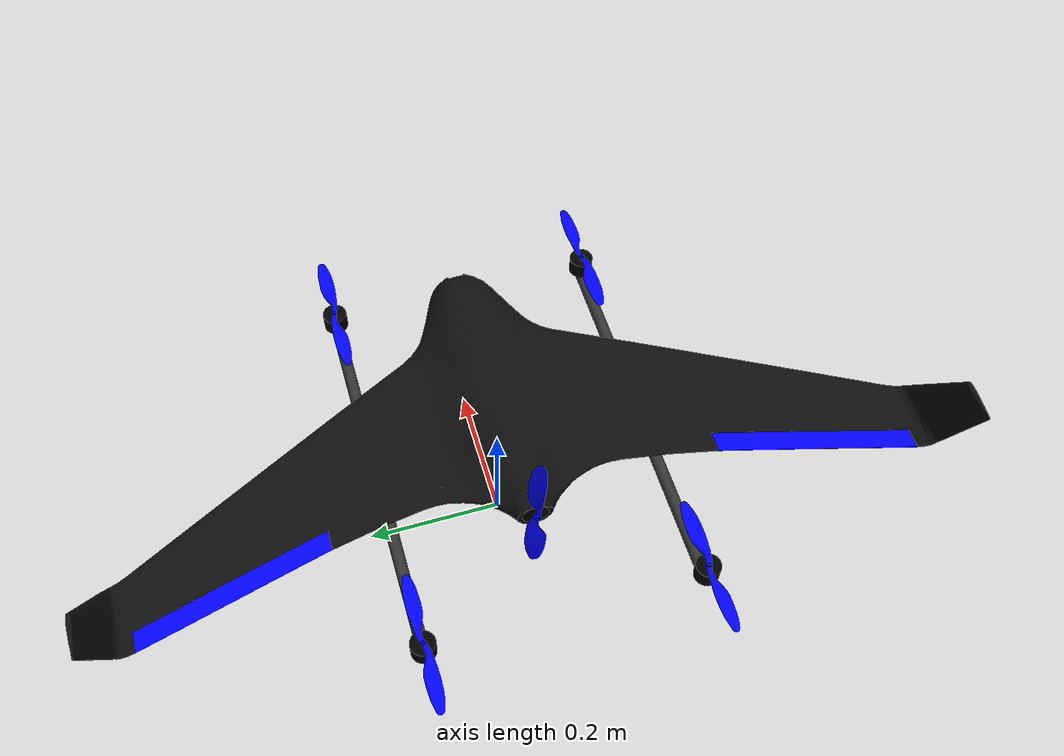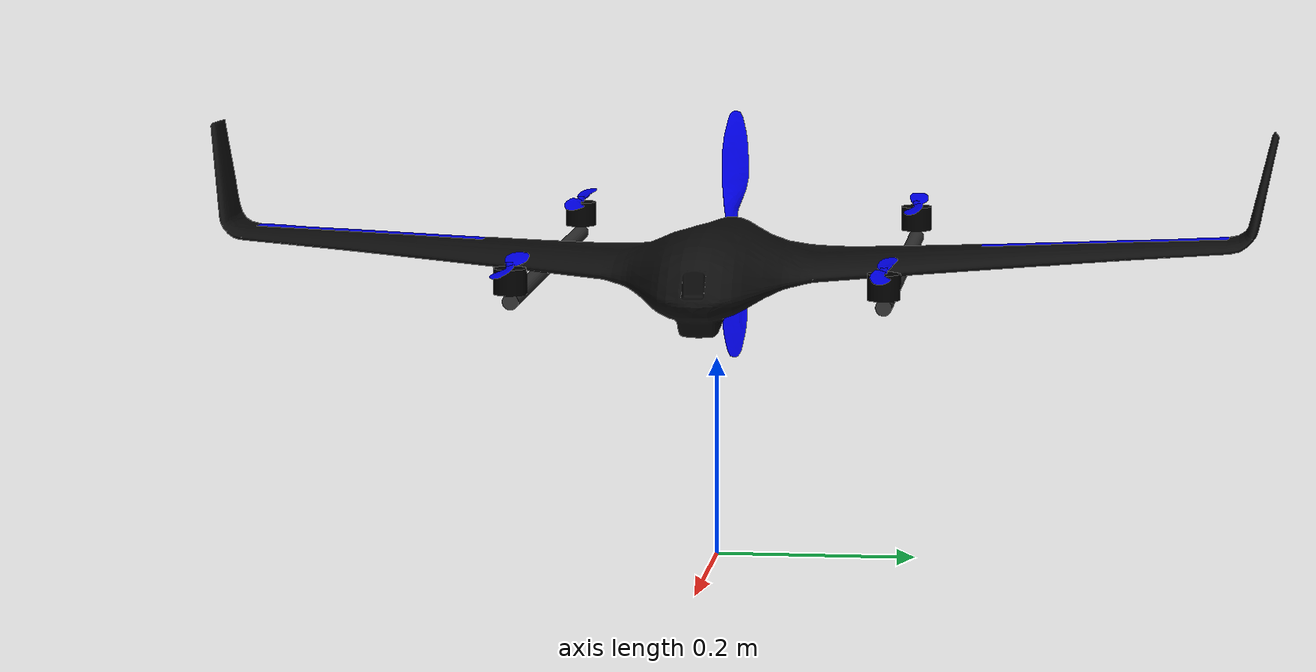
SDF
<?xml version="1.0" ?>
<sdf version="1.9">
  <model name="super_vtol">
    <!-- Spawn slightly above ground -->
    <pose>0 0 0.3 0 0 0</pose>

    <!--
      BASE LINK
      Represents fuselage + wing structure of the Super Stingray VTOL.
      Mass here (~2.5 kg) plus rotors, elevons, and sensors will sum
      to approximately 2.8 kg AUW.
    -->
    <link name="base_link">
      <!-- Link pose in model frame -->
      <pose>0 0 0 0 0 0</pose>

      <!-- Inertial properties: CG ~60 mm behind origin in X -->
      <inertial>
        <pose>-0.06 0 0 0 0 0</pose>
        <mass>2.5</mass>
        <inertia>
          <ixx>0.20</ixx>
          <ixy>0</ixy>
          <ixz>0</ixz>
          <iyy>0.15</iyy>
          <iyz>0</iyz>
          <izz>0.25</izz>
        </inertia>
      </inertial>

      <!-- Collision geometry: simple box approximating fuselage + wing volume -->
      <collision name="base_link_collision">
        <pose>0 0 -0.05 0 0 0</pose>
        <geometry>
          <box>
            <!-- length (X), span (Y), thickness (Z) -->
            <size>0.70 1.13 0.12</size>
          </box>
        </geometry>
        <surface>
          <friction>
            <ode>
              <!-- Low friction to avoid sticky ground behavior -->
              <mu>0.01</mu>
              <mu2>0.01</mu2>
            </ode>
          </friction>
          <contact>
            <ode>
              <kp>100000.0</kp>
              <kd>1.0</kd>
              <min_depth>0.001</min_depth>
            </ode>
          </contact>
        </surface>
      </collision>

      <!-- Main visual: Super Stingray wing + fuselage mesh -->
      <visual name="base_link_visual">
        <geometry>
          <mesh>
            <!-- Keep same scale as working standard_vtol to avoid deformation -->
            <scale>0.52 0.52 0.52</scale>
            <uri>model://super_vtol/meshes/super_wing.dae</uri>
          </mesh>
        </geometry>
        <material>
          <ambient>0.05 0.05 0.05 1</ambient>
          <diffuse>0.05 0.05 0.05 1</diffuse>
        </material>
      </visual>

      <!-- Left boom (visual only) -->
      <visual name="left_boom">
        <pose>-0.06 0.18 -0.0175 0 1.5707 0</pose>
        <geometry>
          <cylinder>
            <length>0.50</length>
            <radius>0.008</radius>
          </cylinder>
        </geometry>
        <material>
          <ambient>0.2 0.2 0.2 1</ambient>
          <diffuse>0.2 0.2 0.2 1</diffuse>
        </material>
      </visual>

      <!-- Right boom (visual only) -->
      <visual name="right_boom">
        <pose>-0.06 -0.18 -0.0175 0 1.5707 0</pose>
        <geometry>
          <cylinder>
            <length>0.50</length>
            <radius>0.008</radius>
          </cylinder>
        </geometry>
        <material>
          <ambient>0.2 0.2 0.2 1</ambient>
          <diffuse>0.2 0.2 0.2 1</diffuse>
        </material>
      </visual>

      <!-- Motor can geometries (visual only, props are separate rotor links) -->
      <visual name="motor_fr">
        <pose>0.19 -0.18 0.003 0 0 0</pose>
        <geometry>
          <cylinder>
            <length>0.025</length>
            <radius>0.016</radius>
          </cylinder>
        </geometry>
        <material>
          <ambient>0 0 0 1</ambient>
          <diffuse>0 0 0 1</diffuse>
        </material>
      </visual>

      <visual name="motor_rr">
        <pose>-0.31 -0.18 0.003 0 0 0</pose>
        <geometry>
          <cylinder>
            <length>0.025</length>
            <radius>0.016</radius>
          </cylinder>
        </geometry>
        <material>
          <ambient>0 0 0 1</ambient>
          <diffuse>0 0 0 1</diffuse>
        </material>
      </visual>

      <visual name="motor_fl">
        <pose>0.19 0.18 0.003 0 0 0</pose>
        <geometry>
          <cylinder>
            <length>0.025</length>
            <radius>0.016</radius>
          </cylinder>
        </geometry>
        <material>
          <ambient>0 0 0 1</ambient>
          <diffuse>0 0 0 1</diffuse>
        </material>
      </visual>

      <visual name="motor_rl">
        <pose>-0.31 0.18 0.003 0 0 0</pose>
        <geometry>
          <cylinder>
            <length>0.025</length>
            <radius>0.016</radius>
          </cylinder>
        </geometry>
        <material>
          <ambient>0 0 0 1</ambient>
          <diffuse>0 0 0 1</diffuse>
        </material>
      </visual>

      <!-- Rear pusher motor can (visual only, prop will be separate rotor link) -->
      <visual name="motor_pusher">
        <pose>-0.16 0 0 0 1.57 0</pose>
        <geometry>
          <cylinder>
            <length>0.035</length>
            <radius>0.018</radius>
          </cylinder>
        </geometry>
        <material>
          <ambient>0 0 0 1</ambient>
          <diffuse>0 0 0 1</diffuse>
        </material>
      </visual>

    </link>
    <!-- VTOL rotor links will be added next -->
    <!-- VTOL ROTORS (4 vertical + 1 rear pusher)                  -->

    <!-- VTOL rotor 0: front-right (uses CCW mesh) -->
    <link name="rotor_0">
      <pose>0.19 -0.18 0.018 0 0 0</pose>
      <inertial>
        <mass>0.04</mass>
        <inertia>
          <ixx>5e-5</ixx>
          <iyy>5e-5</iyy>
          <izz>5e-5</izz>
        </inertia>
      </inertial>
      <visual name="rotor_0_visual">
        <geometry>
          <mesh>
            <scale>0.7 0.7 0.7</scale>
            <uri>model://super_vtol/meshes/vtol_prop_ccw.dae</uri>
          </mesh>
        </geometry>
        <material>
          <ambient>0 0 1 1</ambient>
          <diffuse>0 0 1 1</diffuse>
        </material>
      </visual>
    </link>

    <joint name="rotor_0_joint" type="revolute">
      <parent>base_link</parent>
      <child>rotor_0</child>
      <axis>
        <xyz>0 0 1</xyz>
        <limit>
          <lower>-1e16</lower>
          <upper>1e16</upper>
        </limit>
        <!-- Small damping to avoid oscillatory spin -->
        <dynamics>
          <damping>0.003</damping>
        </dynamics>
      </axis>
    </joint>

    <!-- Two-blade aero model for rotor 0 -->
    <plugin filename="gz-sim-lift-drag-system" name="gz::sim::systems::LiftDrag">
      <!-- Blade 1 -->
      <a0>0.3</a0>
      <cla>4.25</cla>
      <cda>0.01</cda>
      <area>0.01</area>
      <cp>0.085 0 0</cp>
      <air_density>1.2041</air_density>
      <!-- Tangential direction -->
      <forward>0 1 0</forward>
      <!-- Lift upwards in +Z -->
      <upward>0 0 1</upward>
      <link_name>rotor_0</link_name>
    </plugin>

    <plugin filename="gz-sim-lift-drag-system" name="gz::sim::systems::LiftDrag">
      <!-- Blade 2 (opposite side) -->
      <a0>0.3</a0>
      <cla>4.25</cla>
      <cda>0.01</cda>
      <area>0.01</area>
      <cp>-0.085 0 0</cp>
      <air_density>1.2041</air_density>
      <forward>0 -1 0</forward>
      <upward>0 0 1</upward>
      <link_name>rotor_0</link_name>
    </plugin>

    <!-- VTOL rotor 1: rear-left (uses CCW mesh) -->
    <link name="rotor_1">
      <pose>-0.31 0.18 0.018 0 0 0</pose>
      <inertial>
        <mass>0.04</mass>
        <inertia>
          <ixx>5e-5</ixx>
          <iyy>5e-5</iyy>
          <izz>5e-5</izz>
        </inertia>
      </inertial>
      <visual name="rotor_1_visual">
        <geometry>
          <mesh>
            <scale>0.7 0.7 0.7</scale>
            <uri>model://super_vtol/meshes/vtol_prop_ccw.dae</uri>
          </mesh>
        </geometry>
        <material>
          <ambient>0 0 1 1</ambient>
          <diffuse>0 0 1 1</diffuse>
        </material>
      </visual>
    </link>

    <joint name="rotor_1_joint" type="revolute">
      <parent>base_link</parent>
      <child>rotor_1</child>
      <axis>
        <xyz>0 0 1</xyz>
        <dynamics>
          <damping>0.003</damping>
        </dynamics>
      </axis>
    </joint>

    <!-- Two-blade aero model for rotor 1 -->
    <plugin filename="gz-sim-lift-drag-system" name="gz::sim::systems::LiftDrag">
      <!-- Blade 1 -->
      <a0>0.3</a0>
      <cla>4.25</cla>
      <cda>0.01</cda>
      <area>0.01</area>
      <cp>0.085 0 0</cp>
      <air_density>1.2041</air_density>
      <forward>0 1 0</forward>
      <upward>0 0 1</upward>
      <link_name>rotor_1</link_name>
    </plugin>

    <plugin filename="gz-sim-lift-drag-system" name="gz::sim::systems::LiftDrag">
      <!-- Blade 2 -->
      <a0>0.3</a0>
      <cla>4.25</cla>
      <cda>0.01</cda>
      <area>0.01</area>
      <cp>-0.085 0 0</cp>
      <air_density>1.2041</air_density>
      <forward>0 -1 0</forward>
      <upward>0 0 1</upward>
      <link_name>rotor_1</link_name>
    </plugin>

    <!-- VTOL rotor 2: front-left (uses CW mesh) -->
    <link name="rotor_2">
      <pose>0.19 0.18 0.018 0 0 0</pose>
      <inertial>
        <mass>0.04</mass>
        <inertia>
          <ixx>5e-5</ixx>
          <iyy>5e-5</iyy>
          <izz>5e-5</izz>
        </inertia>
      </inertial>
      <visual name="rotor_2_visual">
        <geometry>
          <mesh>
            <scale>0.7 0.7 0.7</scale>
            <uri>model://super_vtol/meshes/vtol_prop_cw.dae</uri>
          </mesh>
        </geometry>
        <material>
          <ambient>0 0 1 1</ambient>
          <diffuse>0 0 1 1</diffuse>
        </material>
      </visual>
    </link>

    <joint name="rotor_2_joint" type="revolute">
      <parent>base_link</parent>
      <child>rotor_2</child>
      <axis>
        <xyz>0 0 1</xyz>
        <dynamics>
          <damping>0.003</damping>
        </dynamics>
      </axis>
    </joint>

    <!-- Two-blade aero model for rotor 2 -->
    <plugin filename="gz-sim-lift-drag-system" name="gz::sim::systems::LiftDrag">
      <!-- Blade 1 -->
      <a0>0.3</a0>
      <cla>4.25</cla>
      <cda>0.01</cda>
      <area>0.01</area>
      <cp>0.085 0 0</cp>
      <air_density>1.2041</air_density>
      <forward>0 -1 0</forward>
      <upward>0 0 1</upward>
      <link_name>rotor_2</link_name>
    </plugin>

    <plugin filename="gz-sim-lift-drag-system" name="gz::sim::systems::LiftDrag">
      <!-- Blade 2 -->
      <a0>0.3</a0>
      <cla>4.25</cla>
      <cda>0.01</cda>
      <area>0.01</area>
      <cp>-0.085 0 0</cp>
      <air_density>1.2041</air_density>
      <forward>0 1 0</forward>
      <upward>0 0 1</upward>
      <link_name>rotor_2</link_name>
    </plugin>

    <!-- VTOL rotor 3: rear-right (uses CW mesh) -->
    <link name="rotor_3">
      <pose>-0.31 -0.18 0.018 0 0 0</pose>
      <inertial>
        <mass>0.04</mass>
        <inertia>
          <ixx>5e-5</ixx>
          <iyy>5e-5</iyy>
          <izz>5e-5</izz>
        </inertia>
      </inertial>
      <visual name="rotor_3_visual">
        <geometry>
          <mesh>
            <scale>0.7 0.7 0.7</scale>
            <uri>model://super_vtol/meshes/vtol_prop_cw.dae</uri>
          </mesh>
        </geometry>
        <material>
          <ambient>0 0 1 1</ambient>
          <diffuse>0 0 1 1</diffuse>
        </material>
      </visual>
    </link>

    <joint name="rotor_3_joint" type="revolute">
      <parent>base_link</parent>
      <child>rotor_3</child>
      <axis>
        <xyz>0 0 1</xyz>
        <dynamics>
          <damping>0.003</damping>
        </dynamics>
      </axis>
    </joint>

    <!-- Two-blade aero model for rotor 3 -->
    <plugin filename="gz-sim-lift-drag-system" name="gz::sim::systems::LiftDrag">
      <!-- Blade 1 -->
      <a0>0.3</a0>
      <cla>4.25</cla>
      <cda>0.01</cda>
      <area>0.01</area>
      <cp>0.085 0 0</cp>
      <air_density>1.2041</air_density>
      <forward>0 -1 0</forward>
      <upward>0 0 1</upward>
      <link_name>rotor_3</link_name>
    </plugin>

    <plugin filename="gz-sim-lift-drag-system" name="gz::sim::systems::LiftDrag">
      <!-- Blade 2 -->
      <a0>0.3</a0>
      <cla>4.25</cla>
      <cda>0.01</cda>
      <area>0.01</area>
      <cp>-0.085 0 0</cp>
      <air_density>1.2041</air_density>
      <forward>0 1 0</forward>
      <upward>0 0 1</upward>
      <link_name>rotor_3</link_name>
    </plugin>

    <!-- Rear pusher rotor (forward-flight prop) -->
    <link name="rotor_pusher">
      <pose>-0.18 0 0 0 1.57 0</pose>
      <inertial>
        <mass>0.06</mass>
        <inertia>
          <ixx>8e-5</ixx>
          <iyy>8e-5</iyy>
          <izz>8e-5</izz>
        </inertia>
      </inertial>
      <visual name="rotor_pusher_visual">
        <geometry>
          <mesh>
            <scale>1.0 1.0 1.0</scale>
            <uri>model://super_vtol/meshes/vtol_prop_ccw.dae</uri>
          </mesh>
        </geometry>
        <material>
          <ambient>0 0 1 1</ambient>
          <diffuse>0 0 1 1</diffuse>
        </material>
      </visual>
    </link>

    <joint name="rotor_pusher_joint" type="revolute">
      <parent>base_link</parent>
      <child>rotor_pusher</child>
      <axis>
        <xyz>0 0 1</xyz>
      </axis>
    </joint>

    <!-- Aerodynamics for rear pusher rotor (thrust along +X) -->
    <plugin filename="gz-sim-lift-drag-system" name="gz::sim::systems::LiftDrag">
      <!-- Blade 1 -->
      <a0>0.3</a0>
      <cla>4.5</cla>
      <cda>0.02</cda>
      <area>0.03</area>
      <cp>0.06 0 0</cp>
      <air_density>1.2041</air_density>
      <!-- Tangential direction -->
      <forward>0 1 0</forward>
      <!-- Lift direction aligned with +X (forward thrust) -->
      <upward>1 0 0</upward>
      <link_name>rotor_pusher</link_name>
    </plugin>

    <plugin filename="gz-sim-lift-drag-system" name="gz::sim::systems::LiftDrag">
      <!-- Blade 2 -->
      <a0>0.3</a0>
      <cla>4.5</cla>
      <cda>0.02</cda>
      <area>0.03</area>
      <cp>-0.11 0 0</cp>
      <air_density>1.2041</air_density>
      <forward>0 -1 0</forward>
      <upward>1 0 0</upward>
      <link_name>rotor_pusher</link_name>
    </plugin>
    <!-- MAIN WING AERODYNAMICS (S5020-BASED APPROXIMATION)       -->

    <plugin filename="gz-sim-lift-drag-system" name="gz::sim::systems::LiftDrag">
      <!-- Zero-lift angle (rad), small positive since S5020 has camber -->
      <a0>0.13</a0>
      <!-- Lift curve slope (1/rad) -->
      <cla>3.7</cla>
      <!-- Baseline drag coefficient (CD0) -->
      <cda>0.06</cda>
      <!-- Effective reference area (m^2) for entire wing/body -->
      <area>0.31</area>
      <air_density>1.2041</air_density>
      <!-- Body-X forward, Z up in model frame -->
      <forward>1 0 0</forward>
      <upward>0 0 1</upward>
      <link_name>base_link</link_name>
    </plugin>

    <!-- ELEVONS (LEFT / RIGHT) + THEIR AERO EFFECTS              -->

    <!-- LEFT ELEVON LINK -->
    <link name="left_elevon">
      <inertial>
        <mass>0.05</mass>
        <inertia>
          <ixx>0.001</ixx>
          <iyy>0.001</iyy>
          <izz>0.001</izz>
        </inertia>
      </inertial>
      <visual name="left_elevon_visual">
        <geometry>
          <mesh>
            <!-- Same scale as original X8 elevon mesh -->
            <scale>0.52 0.52 0.52</scale>
            <uri>model://super_vtol/meshes/super_elevon_left.dae</uri>
          </mesh>
        </geometry>
        <material>
          <ambient>0 0 1 1</ambient>
          <diffuse>0 0 1 1</diffuse>
        </material>
      </visual>
    </link>

    <!-- LEFT ELEVON JOINT (HINGE) -->
    <joint name="left_elevon_joint" type="revolute">
      <parent>base_link</parent>
      <child>left_elevon</child>
      <!-- Position of hinge on left wing trailing edge -->
      <pose>-0.25 0.40 0 0 0 0</pose>
      <axis>
        <!-- Hinge axis along body-Y -->
        <xyz>0 1 0</xyz>
        <limit>
          <!-- Approx. ±30 degrees -->
          <lower>-0.53</lower>
          <upper>0.53</upper>
        </limit>
        <dynamics>
          <!-- Enough damping and stiffness to avoid flutter -->
          <damping>5.0</damping>
          <spring_stiffness>100.0</spring_stiffness>
        </dynamics>
      </axis>
    </joint>

    <!-- LEFT ELEVON AERODYNAMIC EFFECT -->
    <plugin filename="gz-sim-lift-drag-system" name="gz::sim::systems::LiftDrag">
      <!-- Baseline angle offset for elevon section -->
      <a0>0.15</a0>
      <!-- High lift slope since this is a control surface section -->
      <cla>6.8</cla>
      <cda>0.06</cda>
      <!-- Small reference area for left elevon (m^2) -->
      <area>0.04</area>
      <air_density>1.2041</air_density>
      <forward>1 0 0</forward>
      <upward>0 0 1</upward>
      <!-- Force applied to main body to represent elevon effect -->
      <link_name>base_link</link_name>
      <!-- Control coupling from joint angle to CL -->
      <control_joint_name>left_elevon_joint</control_joint_name>
      <!-- Negative: up-elevon (positive deflection) reduces lift on that side for roll -->
      <control_joint_rad_to_cl>-4.0</control_joint_rad_to_cl>
    </plugin>

    <!-- RIGHT ELEVON LINK -->
    <link name="right_elevon">
      <inertial>
        <mass>0.05</mass>
        <inertia>
          <ixx>0.001</ixx>
          <iyy>0.001</iyy>
          <izz>0.001</izz>
        </inertia>
      </inertial>
      <visual name="right_elevon_visual">
        <geometry>
          <mesh>
            <scale>0.52 0.52 0.52</scale>
            <uri>model://super_vtol/meshes/super_elevon_right.dae</uri>
          </mesh>
        </geometry>
        <material>
          <ambient>0 0 1 1</ambient>
          <diffuse>0 0 1 1</diffuse>
        </material>
      </visual>
    </link>

    <!-- RIGHT ELEVON JOINT (HINGE) -->
    <joint name="right_elevon_joint" type="revolute">
      <parent>base_link</parent>
      <child>right_elevon</child>
      <!-- Symmetric position on right wing trailing edge -->
      <pose>-0.25 -0.40 0 0 0 0</pose>
      <axis>
        <xyz>0 1 0</xyz>
        <limit>
          <lower>-0.53</lower>
          <upper>0.53</upper>
        </limit>
        <dynamics>
          <damping>5.0</damping>
          <spring_stiffness>100.0</spring_stiffness>
        </dynamics>
      </axis>
    </joint>

    <!-- RIGHT ELEVON AERODYNAMIC EFFECT -->
    <plugin filename="gz-sim-lift-drag-system" name="gz::sim::systems::LiftDrag">
      <a0>0.15</a0>
      <cla>6.8</cla>
      <cda>0.06</cda>
      <area>0.04</area>
      <air_density>1.2041</air_density>
      <forward>1 0 0</forward>
      <upward>0 0 1</upward>
      <link_name>base_link</link_name>
      <control_joint_name>right_elevon_joint</control_joint_name>
      <control_joint_rad_to_cl>-4.0</control_joint_rad_to_cl>
    </plugin>
    <!-- IMU LINK (SENSOR FOR ARDUPILOT)                          -->

    <link name="imu_link">
      <inertial>
        <mass>0.001</mass>
        <inertia>
          <ixx>1e-9</ixx>
          <iyy>1e-9</iyy>
          <izz>1e-9</izz>
        </inertia>
      </inertial>
      <sensor name="imu_sensor" type="imu">
        <!-- Match orientation you used previously -->
        <pose>0 0 0 3.141593 0 0</pose>
        <always_on>1</always_on>
        <update_rate>1000.0</update_rate>
      </sensor>
    </link>

    <joint name="imu_joint" type="fixed">
      <parent>base_link</parent>
      <child>imu_link</child>
    </joint>

    <!-- GENERIC GAZEBO UTILITY PLUGINS                           -->

    <!-- Publish joint states for visualization / debugging -->
    <plugin filename="gz-sim-joint-state-publisher-system"
            name="gz::sim::systems::JointStatePublisher"/>

    <!-- Allow external systems (ArduPilotPlugin) to apply forces to joints -->
    <plugin filename="gz-sim-apply-joint-force-system"
            name="gz::sim::systems::ApplyJointForce">
      <joint_name>rotor_0_joint</joint_name>
    </plugin>

    <plugin filename="gz-sim-apply-joint-force-system"
            name="gz::sim::systems::ApplyJointForce">
      <joint_name>rotor_1_joint</joint_name>
    </plugin>

    <plugin filename="gz-sim-apply-joint-force-system"
            name="gz::sim::systems::ApplyJointForce">
      <joint_name>rotor_2_joint</joint_name>
    </plugin>

    <plugin filename="gz-sim-apply-joint-force-system"
            name="gz::sim::systems::ApplyJointForce">
      <joint_name>rotor_3_joint</joint_name>
    </plugin>

    <plugin filename="gz-sim-apply-joint-force-system"
            name="gz::sim::systems::ApplyJointForce">
      <joint_name>rotor_pusher_joint</joint_name>
    </plugin>

    <plugin filename="gz-sim-apply-joint-force-system"
            name="gz::sim::systems::ApplyJointForce">
      <joint_name>left_elevon_joint</joint_name>
    </plugin>

    <plugin filename="gz-sim-apply-joint-force-system"
            name="gz::sim::systems::ApplyJointForce">
      <joint_name>right_elevon_joint</joint_name>
    </plugin>

    <!-- ARDUPILOT INTERFACE PLUGIN                               -->

    <plugin name="ArduPilotPlugin" filename="libArduPilotPlugin.so">
      <connectionTimeoutMaxCount>5</connectionTimeoutMaxCount>
      <lock_step>1</lock_step>

      <!-- Coordinate transforms: same as your working setup -->
      <modelXYZToAirplaneXForwardZDown degrees="true">
        0 0 0 180 0 0
      </modelXYZToAirplaneXForwardZDown>
      <gazeboXYZToNED degrees="true">
        0 0 0 180 0 90
      </gazeboXYZToNED>

      <imuName>imu_sensor</imuName>

      <!-- Elevon controls (channels 0, 1) -->
      <control channel="0">
        <jointName>left_elevon_joint</jointName>
        <useForce>1</useForce>
        <multiplier>1.0</multiplier>
        <!-- -0.5 offset centers the elevon at neutral -->
        <offset>-0.5</offset>
        <servo_min>1000</servo_min>
        <servo_max>2000</servo_max>
        <type>POSITION</type>
        <p_gain>10.0</p_gain>
      </control>

      <control channel="1">
        <jointName>right_elevon_joint</jointName>
        <useForce>1</useForce>
        <multiplier>1.0</multiplier>
        <offset>-0.5</offset>
        <servo_min>1000</servo_min>
        <servo_max>2000</servo_max>
        <type>POSITION</type>
        <p_gain>10.0</p_gain>
      </control>

      <!-- Rear pusher motor (channel 2) - initially disabled (multiplier=0) -->
      <control channel="2">
        <jointName>rotor_pusher_joint</jointName>
        <useForce>1</useForce>
        <multiplier>0</multiplier>
        <offset>0</offset>
        <servo_min>1000</servo_min>
        <servo_max>2000</servo_max>
        <type>VELOCITY</type>
        <!-- Small P gain; will be used if multiplier is increased later -->
        <p_gain>0.20</p_gain>
        <cmd_max>3.5</cmd_max>
        <cmd_min>-3.5</cmd_min>
      </control>

      <!-- VTOL motors (Quad X pattern) -->
      <!-- rotor_0: front-right, CCW -->
      <control channel="4">
        <jointName>rotor_0_joint</jointName>
        <useForce>1</useForce>
        <!-- Positive sign for this spin direction -->
        <multiplier>1050</multiplier>
        <offset>0</offset>
        <servo_min>1000</servo_min>
        <servo_max>2000</servo_max>
        <type>VELOCITY</type>
        <!-- Gentle P gain for smoother speed control -->
        <p_gain>0.10</p_gain>
        <cmd_max>3.5</cmd_max>
        <cmd_min>-3.5</cmd_min>
      </control>

      <!-- rotor_1: rear-left, CCW -->
      <control channel="5">
        <jointName>rotor_1_joint</jointName>
        <useForce>1</useForce>
        <multiplier>1050</multiplier>
        <offset>0</offset>
        <servo_min>1000</servo_min>
        <servo_max>2000</servo_max>
        <type>VELOCITY</type>
        <p_gain>0.10</p_gain>
        <cmd_max>3.5</cmd_max>
        <cmd_min>-3.5</cmd_min>
      </control>

      <!-- rotor_2: front-left, CW -->
      <control channel="6">
        <jointName>rotor_2_joint</jointName>
        <useForce>1</useForce>
        <!-- Negative sign for opposite spin direction -->
        <multiplier>-1050</multiplier>
        <offset>0</offset>
        <servo_min>1000</servo_min>
        <servo_max>2000</servo_max>
        <type>VELOCITY</type>
        <p_gain>0.10</p_gain>
        <cmd_max>3.5</cmd_max>
        <cmd_min>-3.5</cmd_min>
      </control>

      <!-- rotor_3: rear-right, CW -->
      <control channel="7">
        <jointName>rotor_3_joint</jointName>
        <useForce>1</useForce>
        <multiplier>-1050</multiplier>
        <offset>0</offset>
        <servo_min>1000</servo_min>
        <servo_max>2000</servo_max>
        <type>VELOCITY</type>
        <p_gain>0.10</p_gain>
        <cmd_max>3.5</cmd_max>
        <cmd_min>-3.5</cmd_min>
      </control>
    </plugin>

  </model>
</sdf>
